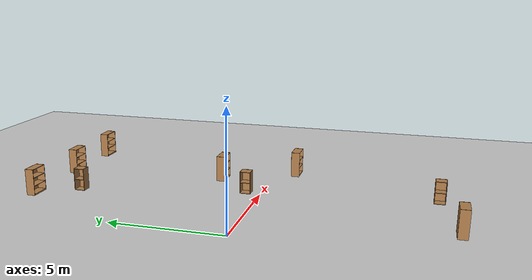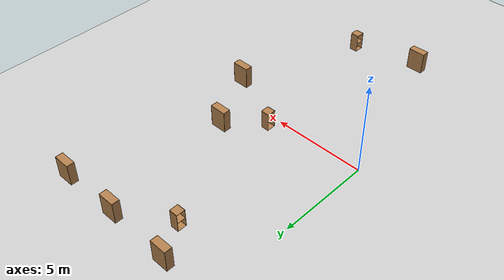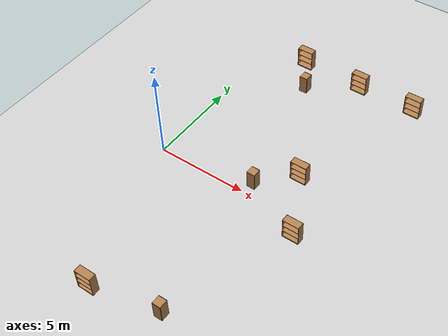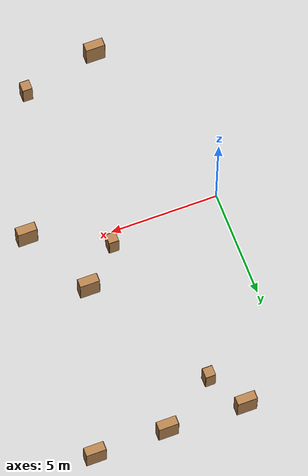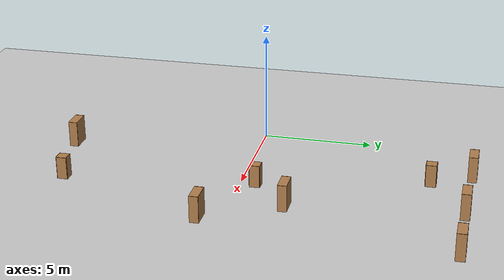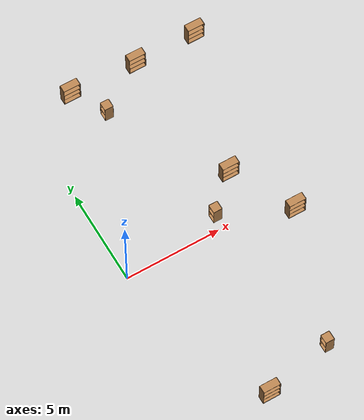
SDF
<sdf version="1.6">
 <world name="default">
  <model name="ground_plane">
   <static>1</static>
   <link name="link">
    <collision name="collision">
     <geometry><plane><normal>0 0 1</normal><size>100 100</size></plane></geometry>
     <surface><friction><ode><mu>100</mu><mu2>50</mu2></ode></friction></surface>
    </collision>
    <visual name="visual">
     <cast_shadows>0</cast_shadows>
     <geometry><plane><normal>0 0 1</normal><size>100 100</size></plane></geometry>
     <material>
      <script><uri>file://media/materials/scripts/gazebo.material</uri><name>Gazebo/Grey</name></script>
     </material>
    </visual>
   </link>
  </model>
  <model name="cabinet_2">
   <static>1</static>
   <link name="cabinet_bottom_plate">
    <inertial>
     <pose>0 0 -1 0 -0 0</pose>
     <inertia><ixx>2.05</ixx><ixy>0</ixy><ixz>0</ixz><iyy>2.05</iyy><iyz>0</iyz><izz>2.05</izz></inertia>
     <mass>25</mass>
    </inertial>
    <collision name="cabinet_bottom_plate_geom">
     <pose>0 0 0.01 0 -0 0</pose>
     <geometry><box><size>0.45 0.45 0.02</size></box></geometry>
    </collision>
    <visual name="cabinet_bottom_plate_geom_visual">
     <pose>0 0 0.01 0 -0 0</pose>
     <geometry><box><size>0.45 0.45 0.02</size></box></geometry>
     <material>
      <script><uri>file://media/materials/scripts/gazebo.material</uri><name>Gazebo/Wood</name></script>
     </material>
    </visual>
    <collision name="cabinet_bottom_plate_geom_cabinet_back_plate">
     <pose>0.235 0 0.51 0 -0 0</pose>
     <geometry><box><size>0.02 0.45 1.02</size></box></geometry>
    </collision>
    <visual name="cabinet_bottom_plate_geom_cabinet_back_plate_visual">
     <pose>0.235 0 0.51 0 -0 0</pose>
     <geometry><box><size>0.02 0.45 1.02</size></box></geometry>
     <material>
      <script><uri>file://media/materials/scripts/gazebo.material</uri><name>Gazebo/Wood</name></script>
     </material>
    </visual>
    <collision name="cabinet_bottom_plate_geom_cabinet_left_plate">
     <pose>0 0.235 0.51 0 -0 0</pose>
     <geometry><box><size>0.45 0.02 1.02</size></box></geometry>
    </collision>
    <visual name="cabinet_bottom_plate_geom_cabinet_left_plate_visual">
     <pose>0 0.235 0.51 0 -0 0</pose>
     <geometry><box><size>0.45 0.02 1.02</size></box></geometry>
     <material>
      <script><uri>file://media/materials/scripts/gazebo.material</uri><name>Gazebo/Wood</name></script>
     </material>
    </visual>
    <collision name="cabinet_bottom_plate_geom_cabinet_middle_plate">
     <pose>0 0 0.51 0 -0 0</pose>
     <geometry><box><size>0.45 0.45 0.02</size></box></geometry>
    </collision>
    <visual name="cabinet_bottom_plate_geom_cabinet_middle_plate_visual">
     <pose>0 0 0.51 0 -0 0</pose>
     <geometry><box><size>0.45 0.45 0.02</size></box></geometry>
     <material>
      <script><uri>file://media/materials/scripts/gazebo.material</uri><name>Gazebo/Wood</name></script>
     </material>
    </visual>
    <collision name="cabinet_bottom_plate_geom_cabinet_right_plate">
     <pose>0 -0.235 0.51 0 -0 0</pose>
     <geometry><box><size>0.45 0.02 1.02</size></box></geometry>
    </collision>
    <visual name="cabinet_bottom_plate_geom_cabinet_right_plate_visual">
     <pose>0 -0.235 0.51 0 -0 0</pose>
     <geometry><box><size>0.45 0.02 1.02</size></box></geometry>
     <material>
      <script><uri>file://media/materials/scripts/gazebo.material</uri><name>Gazebo/Wood</name></script>
     </material>
    </visual>
    <collision name="cabinet_bottom_plate_geom_cabinet_top_plate">
     <pose>0 0 1.01 0 -0 0</pose>
     <geometry><box><size>0.45 0.45 0.02</size></box></geometry>
    </collision>
    <visual name="cabinet_bottom_plate_geom_cabinet_top_plate_visual">
     <pose>0 0 1.01 0 -0 0</pose>
     <geometry><box><size>0.45 0.45 0.02</size></box></geometry>
     <material>
      <script><uri>file://media/materials/scripts/gazebo.material</uri><name>Gazebo/Wood</name></script>
     </material>
    </visual>
   </link>
   <pose>3.52346 8.11397 0 0 -0 0</pose>
  </model>
  <model name="cabinet_3">
   <static>1</static>
   <link name="cabinet_bottom_plate">
    <inertial>
     <pose>0 0 -1 0 -0 0</pose>
     <inertia><ixx>2.05</ixx><ixy>0</ixy><ixz>0</ixz><iyy>2.05</iyy><iyz>0</iyz><izz>2.05</izz></inertia>
     <mass>25</mass>
    </inertial>
    <collision name="cabinet_bottom_plate_geom">
     <pose>0 0 0.01 0 -0 0</pose>
     <geometry><box><size>0.45 0.45 0.02</size></box></geometry>
    </collision>
    <visual name="cabinet_bottom_plate_geom_visual">
     <pose>0 0 0.01 0 -0 0</pose>
     <geometry><box><size>0.45 0.45 0.02</size></box></geometry>
     <material>
      <script><uri>file://media/materials/scripts/gazebo.material</uri><name>Gazebo/Wood</name></script>
     </material>
    </visual>
    <collision name="cabinet_bottom_plate_geom_cabinet_back_plate">
     <pose>0.235 0 0.51 0 -0 0</pose>
     <geometry><box><size>0.02 0.45 1.02</size></box></geometry>
    </collision>
    <visual name="cabinet_bottom_plate_geom_cabinet_back_plate_visual">
     <pose>0.235 0 0.51 0 -0 0</pose>
     <geometry><box><size>0.02 0.45 1.02</size></box></geometry>
     <material>
      <script><uri>file://media/materials/scripts/gazebo.material</uri><name>Gazebo/Wood</name></script>
     </material>
    </visual>
    <collision name="cabinet_bottom_plate_geom_cabinet_left_plate">
     <pose>0 0.235 0.51 0 -0 0</pose>
     <geometry><box><size>0.45 0.02 1.02</size></box></geometry>
    </collision>
    <visual name="cabinet_bottom_plate_geom_cabinet_left_plate_visual">
     <pose>0 0.235 0.51 0 -0 0</pose>
     <geometry><box><size>0.45 0.02 1.02</size></box></geometry>
     <material>
      <script><uri>file://media/materials/scripts/gazebo.material</uri><name>Gazebo/Wood</name></script>
     </material>
    </visual>
    <collision name="cabinet_bottom_plate_geom_cabinet_middle_plate">
     <pose>0 0 0.51 0 -0 0</pose>
     <geometry><box><size>0.45 0.45 0.02</size></box></geometry>
    </collision>
    <visual name="cabinet_bottom_plate_geom_cabinet_middle_plate_visual">
     <pose>0 0 0.51 0 -0 0</pose>
     <geometry><box><size>0.45 0.45 0.02</size></box></geometry>
     <material>
      <script><uri>file://media/materials/scripts/gazebo.material</uri><name>Gazebo/Wood</name></script>
     </material>
    </visual>
    <collision name="cabinet_bottom_plate_geom_cabinet_right_plate">
     <pose>0 -0.235 0.51 0 -0 0</pose>
     <geometry><box><size>0.45 0.02 1.02</size></box></geometry>
    </collision>
    <visual name="cabinet_bottom_plate_geom_cabinet_right_plate_visual">
     <pose>0 -0.235 0.51 0 -0 0</pose>
     <geometry><box><size>0.45 0.02 1.02</size></box></geometry>
     <material>
      <script><uri>file://media/materials/scripts/gazebo.material</uri><name>Gazebo/Wood</name></script>
     </material>
    </visual>
    <collision name="cabinet_bottom_plate_geom_cabinet_top_plate">
     <pose>0 0 1.01 0 -0 0</pose>
     <geometry><box><size>0.45 0.45 0.02</size></box></geometry>
    </collision>
    <visual name="cabinet_bottom_plate_geom_cabinet_top_plate_visual">
     <pose>0 0 1.01 0 -0 0</pose>
     <geometry><box><size>0.45 0.45 0.02</size></box></geometry>
     <material>
      <script><uri>file://media/materials/scripts/gazebo.material</uri><name>Gazebo/Wood</name></script>
     </material>
    </visual>
   </link>
   <pose>5.21342 0.69056 0 0 -0 0</pose>
  </model>
  <model name="cabinet_6">
   <static>1</static>
   <link name="cabinet_bottom_plate">
    <inertial>
     <pose>0 0 -1 0 -0 0</pose>
     <inertia><ixx>2.05</ixx><ixy>0</ixy><ixz>0</ixz><iyy>2.05</iyy><iyz>0</iyz><izz>2.05</izz></inertia>
     <mass>25</mass>
    </inertial>
    <collision name="cabinet_bottom_plate_geom">
     <pose>0 0 0.01 0 -0 0</pose>
     <geometry><box><size>0.45 0.45 0.02</size></box></geometry>
    </collision>
    <visual name="cabinet_bottom_plate_geom_visual">
     <pose>0 0 0.01 0 -0 0</pose>
     <geometry><box><size>0.45 0.45 0.02</size></box></geometry>
     <material>
      <script><uri>file://media/materials/scripts/gazebo.material</uri><name>Gazebo/Wood</name></script>
     </material>
    </visual>
    <collision name="cabinet_bottom_plate_geom_cabinet_back_plate">
     <pose>0.235 0 0.51 0 -0 0</pose>
     <geometry><box><size>0.02 0.45 1.02</size></box></geometry>
    </collision>
    <visual name="cabinet_bottom_plate_geom_cabinet_back_plate_visual">
     <pose>0.235 0 0.51 0 -0 0</pose>
     <geometry><box><size>0.02 0.45 1.02</size></box></geometry>
     <material>
      <script><uri>file://media/materials/scripts/gazebo.material</uri><name>Gazebo/Wood</name></script>
     </material>
    </visual>
    <collision name="cabinet_bottom_plate_geom_cabinet_left_plate">
     <pose>0 0.235 0.51 0 -0 0</pose>
     <geometry><box><size>0.45 0.02 1.02</size></box></geometry>
    </collision>
    <visual name="cabinet_bottom_plate_geom_cabinet_left_plate_visual">
     <pose>0 0.235 0.51 0 -0 0</pose>
     <geometry><box><size>0.45 0.02 1.02</size></box></geometry>
     <material>
      <script><uri>file://media/materials/scripts/gazebo.material</uri><name>Gazebo/Wood</name></script>
     </material>
    </visual>
    <collision name="cabinet_bottom_plate_geom_cabinet_middle_plate">
     <pose>0 0 0.51 0 -0 0</pose>
     <geometry><box><size>0.45 0.45 0.02</size></box></geometry>
    </collision>
    <visual name="cabinet_bottom_plate_geom_cabinet_middle_plate_visual">
     <pose>0 0 0.51 0 -0 0</pose>
     <geometry><box><size>0.45 0.45 0.02</size></box></geometry>
     <material>
      <script><uri>file://media/materials/scripts/gazebo.material</uri><name>Gazebo/Wood</name></script>
     </material>
    </visual>
    <collision name="cabinet_bottom_plate_geom_cabinet_right_plate">
     <pose>0 -0.235 0.51 0 -0 0</pose>
     <geometry><box><size>0.45 0.02 1.02</size></box></geometry>
    </collision>
    <visual name="cabinet_bottom_plate_geom_cabinet_right_plate_visual">
     <pose>0 -0.235 0.51 0 -0 0</pose>
     <geometry><box><size>0.45 0.02 1.02</size></box></geometry>
     <material>
      <script><uri>file://media/materials/scripts/gazebo.material</uri><name>Gazebo/Wood</name></script>
     </material>
    </visual>
    <collision name="cabinet_bottom_plate_geom_cabinet_top_plate">
     <pose>0 0 1.01 0 -0 0</pose>
     <geometry><box><size>0.45 0.45 0.02</size></box></geometry>
    </collision>
    <visual name="cabinet_bottom_plate_geom_cabinet_top_plate_visual">
     <pose>0 0 1.01 0 -0 0</pose>
     <geometry><box><size>0.45 0.45 0.02</size></box></geometry>
     <material>
      <script><uri>file://media/materials/scripts/gazebo.material</uri><name>Gazebo/Wood</name></script>
     </material>
    </visual>
   </link>
   <pose>6.23569 -7.74598 0 0 -0 0</pose>
  </model>
  <model name="bookshelf">
   <static>1</static>
   <link name="link">
    <inertial><mass>1</mass></inertial>
    <collision name="back">
     <pose>0 0.005 0.6 0 -0 0</pose>
     <geometry><box><size>0.9 0.01 1.2</size></box></geometry>
    </collision>
    <visual name="visual1">
     <pose>0 0.005 0.6 0 -0 0</pose>
     <geometry><box><size>0.9 0.01 1.2</size></box></geometry>
     <material>
      <script><uri>file://media/materials/scripts/gazebo.material</uri><name>Gazebo/Wood</name></script>
     </material>
    </visual>
    <collision name="left_side">
     <pose>0.45 -0.195 0.6 0 -0 0</pose>
     <geometry><box><size>0.02 0.4 1.2</size></box></geometry>
    </collision>
    <visual name="visual2">
     <pose>0.45 -0.195 0.6 0 -0 0</pose>
     <geometry><box><size>0.02 0.4 1.2</size></box></geometry>
     <material>
      <script><uri>file://media/materials/scripts/gazebo.material</uri><name>Gazebo/Wood</name></script>
     </material>
    </visual>
    <collision name="right_side">
     <pose>-0.45 -0.195 0.6 0 -0 0</pose>
     <geometry><box><size>0.02 0.4 1.2</size></box></geometry>
    </collision>
    <visual name="visual3">
     <pose>-0.45 -0.195 0.6 0 -0 0</pose>
     <geometry><box><size>0.02 0.4 1.2</size></box></geometry>
     <material>
      <script><uri>file://media/materials/scripts/gazebo.material</uri><name>Gazebo/Wood</name></script>
     </material>
    </visual>
    <collision name="bottom">
     <pose>0 -0.195 0.03 0 -0 0</pose>
     <geometry><box><size>0.88 0.4 0.06</size></box></geometry>
    </collision>
    <visual name="visual4">
     <pose>0 -0.195 0.03 0 -0 0</pose>
     <geometry><box><size>0.88 0.4 0.06</size></box></geometry>
     <material>
      <script><uri>file://media/materials/scripts/gazebo.material</uri><name>Gazebo/Wood</name></script>
     </material>
    </visual>
    <collision name="top">
     <pose>0 -0.195 1.19 0 -0 0</pose>
     <geometry><box><size>0.88 0.4 0.02</size></box></geometry>
    </collision>
    <visual name="visual5">
     <pose>0 -0.195 1.19 0 -0 0</pose>
     <geometry><box><size>0.88 0.4 0.02</size></box></geometry>
     <material>
      <script><uri>file://media/materials/scripts/gazebo.material</uri><name>Gazebo/Wood</name></script>
     </material>
    </visual>
    <collision name="low_shelf">
     <pose>0 -0.195 0.43 0 -0 0</pose>
     <geometry><box><size>0.88 0.4 0.02</size></box></geometry>
    </collision>
    <visual name="visual6">
     <pose>0 -0.195 0.43 0 -0 0</pose>
     <geometry><box><size>0.88 0.4 0.02</size></box></geometry>
     <material>
      <script><uri>file://media/materials/scripts/gazebo.material</uri><name>Gazebo/Wood</name></script>
     </material>
    </visual>
    <collision name="high_shelf">
     <pose>0 -0.195 0.8 0 -0 0</pose>
     <geometry><box><size>0.88 0.4 0.02</size></box></geometry>
    </collision>
    <visual name="visual7">
     <pose>0 -0.195 0.8 0 -0 0</pose>
     <geometry><box><size>0.88 0.4 0.02</size></box></geometry>
     <material>
      <script><uri>file://media/materials/scripts/gazebo.material</uri><name>Gazebo/Wood</name></script>
     </material>
    </visual>
   </link>
   <pose>9.37856 9.94846 0 0 -0 0</pose>
  </model>
  <model name="bookshelf_0">
   <static>1</static>
   <link name="link">
    <inertial><mass>1</mass></inertial>
    <collision name="back">
     <pose>0 0.005 0.6 0 -0 0</pose>
     <geometry><box><size>0.9 0.01 1.2</size></box></geometry>
    </collision>
    <visual name="visual1">
     <pose>0 0.005 0.6 0 -0 0</pose>
     <geometry><box><size>0.9 0.01 1.2</size></box></geometry>
     <material>
      <script><uri>file://media/materials/scripts/gazebo.material</uri><name>Gazebo/Wood</name></script>
     </material>
    </visual>
    <collision name="left_side">
     <pose>0.45 -0.195 0.6 0 -0 0</pose>
     <geometry><box><size>0.02 0.4 1.2</size></box></geometry>
    </collision>
    <visual name="visual2">
     <pose>0.45 -0.195 0.6 0 -0 0</pose>
     <geometry><box><size>0.02 0.4 1.2</size></box></geometry>
     <material>
      <script><uri>file://media/materials/scripts/gazebo.material</uri><name>Gazebo/Wood</name></script>
     </material>
    </visual>
    <collision name="right_side">
     <pose>-0.45 -0.195 0.6 0 -0 0</pose>
     <geometry><box><size>0.02 0.4 1.2</size></box></geometry>
    </collision>
    <visual name="visual3">
     <pose>-0.45 -0.195 0.6 0 -0 0</pose>
     <geometry><box><size>0.02 0.4 1.2</size></box></geometry>
     <material>
      <script><uri>file://media/materials/scripts/gazebo.material</uri><name>Gazebo/Wood</name></script>
     </material>
    </visual>
    <collision name="bottom">
     <pose>0 -0.195 0.03 0 -0 0</pose>
     <geometry><box><size>0.88 0.4 0.06</size></box></geometry>
    </collision>
    <visual name="visual4">
     <pose>0 -0.195 0.03 0 -0 0</pose>
     <geometry><box><size>0.88 0.4 0.06</size></box></geometry>
     <material>
      <script><uri>file://media/materials/scripts/gazebo.material</uri><name>Gazebo/Wood</name></script>
     </material>
    </visual>
    <collision name="top">
     <pose>0 -0.195 1.19 0 -0 0</pose>
     <geometry><box><size>0.88 0.4 0.02</size></box></geometry>
    </collision>
    <visual name="visual5">
     <pose>0 -0.195 1.19 0 -0 0</pose>
     <geometry><box><size>0.88 0.4 0.02</size></box></geometry>
     <material>
      <script><uri>file://media/materials/scripts/gazebo.material</uri><name>Gazebo/Wood</name></script>
     </material>
    </visual>
    <collision name="low_shelf">
     <pose>0 -0.195 0.43 0 -0 0</pose>
     <geometry><box><size>0.88 0.4 0.02</size></box></geometry>
    </collision>
    <visual name="visual6">
     <pose>0 -0.195 0.43 0 -0 0</pose>
     <geometry><box><size>0.88 0.4 0.02</size></box></geometry>
     <material>
      <script><uri>file://media/materials/scripts/gazebo.material</uri><name>Gazebo/Wood</name></script>
     </material>
    </visual>
    <collision name="high_shelf">
     <pose>0 -0.195 0.8 0 -0 0</pose>
     <geometry><box><size>0.88 0.4 0.02</size></box></geometry>
    </collision>
    <visual name="visual7">
     <pose>0 -0.195 0.8 0 -0 0</pose>
     <geometry><box><size>0.88 0.4 0.02</size></box></geometry>
     <material>
      <script><uri>file://media/materials/scripts/gazebo.material</uri><name>Gazebo/Wood</name></script>
     </material>
    </visual>
   </link>
   <pose>6.07152 9.94292 0 0 -0 0</pose>
  </model>
  <model name="bookshelf_1">
   <static>1</static>
   <link name="link">
    <inertial><mass>1</mass></inertial>
    <collision name="back">
     <pose>0 0.005 0.6 0 -0 0</pose>
     <geometry><box><size>0.9 0.01 1.2</size></box></geometry>
    </collision>
    <visual name="visual1">
     <pose>0 0.005 0.6 0 -0 0</pose>
     <geometry><box><size>0.9 0.01 1.2</size></box></geometry>
     <material>
      <script><uri>file://media/materials/scripts/gazebo.material</uri><name>Gazebo/Wood</name></script>
     </material>
    </visual>
    <collision name="left_side">
     <pose>0.45 -0.195 0.6 0 -0 0</pose>
     <geometry><box><size>0.02 0.4 1.2</size></box></geometry>
    </collision>
    <visual name="visual2">
     <pose>0.45 -0.195 0.6 0 -0 0</pose>
     <geometry><box><size>0.02 0.4 1.2</size></box></geometry>
     <material>
      <script><uri>file://media/materials/scripts/gazebo.material</uri><name>Gazebo/Wood</name></script>
     </material>
    </visual>
    <collision name="right_side">
     <pose>-0.45 -0.195 0.6 0 -0 0</pose>
     <geometry><box><size>0.02 0.4 1.2</size></box></geometry>
    </collision>
    <visual name="visual3">
     <pose>-0.45 -0.195 0.6 0 -0 0</pose>
     <geometry><box><size>0.02 0.4 1.2</size></box></geometry>
     <material>
      <script><uri>file://media/materials/scripts/gazebo.material</uri><name>Gazebo/Wood</name></script>
     </material>
    </visual>
    <collision name="bottom">
     <pose>0 -0.195 0.03 0 -0 0</pose>
     <geometry><box><size>0.88 0.4 0.06</size></box></geometry>
    </collision>
    <visual name="visual4">
     <pose>0 -0.195 0.03 0 -0 0</pose>
     <geometry><box><size>0.88 0.4 0.06</size></box></geometry>
     <material>
      <script><uri>file://media/materials/scripts/gazebo.material</uri><name>Gazebo/Wood</name></script>
     </material>
    </visual>
    <collision name="top">
     <pose>0 -0.195 1.19 0 -0 0</pose>
     <geometry><box><size>0.88 0.4 0.02</size></box></geometry>
    </collision>
    <visual name="visual5">
     <pose>0 -0.195 1.19 0 -0 0</pose>
     <geometry><box><size>0.88 0.4 0.02</size></box></geometry>
     <material>
      <script><uri>file://media/materials/scripts/gazebo.material</uri><name>Gazebo/Wood</name></script>
     </material>
    </visual>
    <collision name="low_shelf">
     <pose>0 -0.195 0.43 0 -0 0</pose>
     <geometry><box><size>0.88 0.4 0.02</size></box></geometry>
    </collision>
    <visual name="visual6">
     <pose>0 -0.195 0.43 0 -0 0</pose>
     <geometry><box><size>0.88 0.4 0.02</size></box></geometry>
     <material>
      <script><uri>file://media/materials/scripts/gazebo.material</uri><name>Gazebo/Wood</name></script>
     </material>
    </visual>
    <collision name="high_shelf">
     <pose>0 -0.195 0.8 0 -0 0</pose>
     <geometry><box><size>0.88 0.4 0.02</size></box></geometry>
    </collision>
    <visual name="visual7">
     <pose>0 -0.195 0.8 0 -0 0</pose>
     <geometry><box><size>0.88 0.4 0.02</size></box></geometry>
     <material>
      <script><uri>file://media/materials/scripts/gazebo.material</uri><name>Gazebo/Wood</name></script>
     </material>
    </visual>
   </link>
   <pose>6.92756 2.50665 0 0 -0 0</pose>
  </model>
  <model name="bookshelf_2">
   <static>1</static>
   <link name="link">
    <inertial><mass>1</mass></inertial>
    <collision name="back">
     <pose>0 0.005 0.6 0 -0 0</pose>
     <geometry><box><size>0.9 0.01 1.2</size></box></geometry>
    </collision>
    <visual name="visual1">
     <pose>0 0.005 0.6 0 -0 0</pose>
     <geometry><box><size>0.9 0.01 1.2</size></box></geometry>
     <material>
      <script><uri>file://media/materials/scripts/gazebo.material</uri><name>Gazebo/Wood</name></script>
     </material>
    </visual>
    <collision name="left_side">
     <pose>0.45 -0.195 0.6 0 -0 0</pose>
     <geometry><box><size>0.02 0.4 1.2</size></box></geometry>
    </collision>
    <visual name="visual2">
     <pose>0.45 -0.195 0.6 0 -0 0</pose>
     <geometry><box><size>0.02 0.4 1.2</size></box></geometry>
     <material>
      <script><uri>file://media/materials/scripts/gazebo.material</uri><name>Gazebo/Wood</name></script>
     </material>
    </visual>
    <collision name="right_side">
     <pose>-0.45 -0.195 0.6 0 -0 0</pose>
     <geometry><box><size>0.02 0.4 1.2</size></box></geometry>
    </collision>
    <visual name="visual3">
     <pose>-0.45 -0.195 0.6 0 -0 0</pose>
     <geometry><box><size>0.02 0.4 1.2</size></box></geometry>
     <material>
      <script><uri>file://media/materials/scripts/gazebo.material</uri><name>Gazebo/Wood</name></script>
     </material>
    </visual>
    <collision name="bottom">
     <pose>0 -0.195 0.03 0 -0 0</pose>
     <geometry><box><size>0.88 0.4 0.06</size></box></geometry>
    </collision>
    <visual name="visual4">
     <pose>0 -0.195 0.03 0 -0 0</pose>
     <geometry><box><size>0.88 0.4 0.06</size></box></geometry>
     <material>
      <script><uri>file://media/materials/scripts/gazebo.material</uri><name>Gazebo/Wood</name></script>
     </material>
    </visual>
    <collision name="top">
     <pose>0 -0.195 1.19 0 -0 0</pose>
     <geometry><box><size>0.88 0.4 0.02</size></box></geometry>
    </collision>
    <visual name="visual5">
     <pose>0 -0.195 1.19 0 -0 0</pose>
     <geometry><box><size>0.88 0.4 0.02</size></box></geometry>
     <material>
      <script><uri>file://media/materials/scripts/gazebo.material</uri><name>Gazebo/Wood</name></script>
     </material>
    </visual>
    <collision name="low_shelf">
     <pose>0 -0.195 0.43 0 -0 0</pose>
     <geometry><box><size>0.88 0.4 0.02</size></box></geometry>
    </collision>
    <visual name="visual6">
     <pose>0 -0.195 0.43 0 -0 0</pose>
     <geometry><box><size>0.88 0.4 0.02</size></box></geometry>
     <material>
      <script><uri>file://media/materials/scripts/gazebo.material</uri><name>Gazebo/Wood</name></script>
     </material>
    </visual>
    <collision name="high_shelf">
     <pose>0 -0.195 0.8 0 -0 0</pose>
     <geometry><box><size>0.88 0.4 0.02</size></box></geometry>
    </collision>
    <visual name="visual7">
     <pose>0 -0.195 0.8 0 -0 0</pose>
     <geometry><box><size>0.88 0.4 0.02</size></box></geometry>
     <material>
      <script><uri>file://media/materials/scripts/gazebo.material</uri><name>Gazebo/Wood</name></script>
     </material>
    </visual>
   </link>
   <pose>8.64228 -0.775818 0 0 -0 0</pose>
  </model>
  <model name="bookshelf_4">
   <static>1</static>
   <link name="link">
    <inertial><mass>1</mass></inertial>
    <collision name="back">
     <pose>0 0.005 0.6 0 -0 0</pose>
     <geometry><box><size>0.9 0.01 1.2</size></box></geometry>
    </collision>
    <visual name="visual1">
     <pose>0 0.005 0.6 0 -0 0</pose>
     <geometry><box><size>0.9 0.01 1.2</size></box></geometry>
     <material>
      <script><uri>file://media/materials/scripts/gazebo.material</uri><name>Gazebo/Wood</name></script>
     </material>
    </visual>
    <collision name="left_side">
     <pose>0.45 -0.195 0.6 0 -0 0</pose>
     <geometry><box><size>0.02 0.4 1.2</size></box></geometry>
    </collision>
    <visual name="visual2">
     <pose>0.45 -0.195 0.6 0 -0 0</pose>
     <geometry><box><size>0.02 0.4 1.2</size></box></geometry>
     <material>
      <script><uri>file://media/materials/scripts/gazebo.material</uri><name>Gazebo/Wood</name></script>
     </material>
    </visual>
    <collision name="right_side">
     <pose>-0.45 -0.195 0.6 0 -0 0</pose>
     <geometry><box><size>0.02 0.4 1.2</size></box></geometry>
    </collision>
    <visual name="visual3">
     <pose>-0.45 -0.195 0.6 0 -0 0</pose>
     <geometry><box><size>0.02 0.4 1.2</size></box></geometry>
     <material>
      <script><uri>file://media/materials/scripts/gazebo.material</uri><name>Gazebo/Wood</name></script>
     </material>
    </visual>
    <collision name="bottom">
     <pose>0 -0.195 0.03 0 -0 0</pose>
     <geometry><box><size>0.88 0.4 0.06</size></box></geometry>
    </collision>
    <visual name="visual4">
     <pose>0 -0.195 0.03 0 -0 0</pose>
     <geometry><box><size>0.88 0.4 0.06</size></box></geometry>
     <material>
      <script><uri>file://media/materials/scripts/gazebo.material</uri><name>Gazebo/Wood</name></script>
     </material>
    </visual>
    <collision name="top">
     <pose>0 -0.195 1.19 0 -0 0</pose>
     <geometry><box><size>0.88 0.4 0.02</size></box></geometry>
    </collision>
    <visual name="visual5">
     <pose>0 -0.195 1.19 0 -0 0</pose>
     <geometry><box><size>0.88 0.4 0.02</size></box></geometry>
     <material>
      <script><uri>file://media/materials/scripts/gazebo.material</uri><name>Gazebo/Wood</name></script>
     </material>
    </visual>
    <collision name="low_shelf">
     <pose>0 -0.195 0.43 0 -0 0</pose>
     <geometry><box><size>0.88 0.4 0.02</size></box></geometry>
    </collision>
    <visual name="visual6">
     <pose>0 -0.195 0.43 0 -0 0</pose>
     <geometry><box><size>0.88 0.4 0.02</size></box></geometry>
     <material>
      <script><uri>file://media/materials/scripts/gazebo.material</uri><name>Gazebo/Wood</name></script>
     </material>
    </visual>
    <collision name="high_shelf">
     <pose>0 -0.195 0.8 0 -0 0</pose>
     <geometry><box><size>0.88 0.4 0.02</size></box></geometry>
    </collision>
    <visual name="visual7">
     <pose>0 -0.195 0.8 0 -0 0</pose>
     <geometry><box><size>0.88 0.4 0.02</size></box></geometry>
     <material>
      <script><uri>file://media/materials/scripts/gazebo.material</uri><name>Gazebo/Wood</name></script>
     </material>
    </visual>
   </link>
   <pose>2.49632 10.0511 0 0 -0 0</pose>
  </model>
  <model name="bookshelf_5">
   <static>1</static>
   <link name="link">
    <inertial><mass>1</mass></inertial>
    <collision name="back">
     <pose>0 0.005 0.6 0 -0 0</pose>
     <geometry><box><size>0.9 0.01 1.2</size></box></geometry>
    </collision>
    <visual name="visual1">
     <pose>0 0.005 0.6 0 -0 0</pose>
     <geometry><box><size>0.9 0.01 1.2</size></box></geometry>
     <material>
      <script><uri>file://media/materials/scripts/gazebo.material</uri><name>Gazebo/Wood</name></script>
     </material>
    </visual>
    <collision name="left_side">
     <pose>0.45 -0.195 0.6 0 -0 0</pose>
     <geometry><box><size>0.02 0.4 1.2</size></box></geometry>
    </collision>
    <visual name="visual2">
     <pose>0.45 -0.195 0.6 0 -0 0</pose>
     <geometry><box><size>0.02 0.4 1.2</size></box></geometry>
     <material>
      <script><uri>file://media/materials/scripts/gazebo.material</uri><name>Gazebo/Wood</name></script>
     </material>
    </visual>
    <collision name="right_side">
     <pose>-0.45 -0.195 0.6 0 -0 0</pose>
     <geometry><box><size>0.02 0.4 1.2</size></box></geometry>
    </collision>
    <visual name="visual3">
     <pose>-0.45 -0.195 0.6 0 -0 0</pose>
     <geometry><box><size>0.02 0.4 1.2</size></box></geometry>
     <material>
      <script><uri>file://media/materials/scripts/gazebo.material</uri><name>Gazebo/Wood</name></script>
     </material>
    </visual>
    <collision name="bottom">
     <pose>0 -0.195 0.03 0 -0 0</pose>
     <geometry><box><size>0.88 0.4 0.06</size></box></geometry>
    </collision>
    <visual name="visual4">
     <pose>0 -0.195 0.03 0 -0 0</pose>
     <geometry><box><size>0.88 0.4 0.06</size></box></geometry>
     <material>
      <script><uri>file://media/materials/scripts/gazebo.material</uri><name>Gazebo/Wood</name></script>
     </material>
    </visual>
    <collision name="top">
     <pose>0 -0.195 1.19 0 -0 0</pose>
     <geometry><box><size>0.88 0.4 0.02</size></box></geometry>
    </collision>
    <visual name="visual5">
     <pose>0 -0.195 1.19 0 -0 0</pose>
     <geometry><box><size>0.88 0.4 0.02</size></box></geometry>
     <material>
      <script><uri>file://media/materials/scripts/gazebo.material</uri><name>Gazebo/Wood</name></script>
     </material>
    </visual>
    <collision name="low_shelf">
     <pose>0 -0.195 0.43 0 -0 0</pose>
     <geometry><box><size>0.88 0.4 0.02</size></box></geometry>
    </collision>
    <visual name="visual6">
     <pose>0 -0.195 0.43 0 -0 0</pose>
     <geometry><box><size>0.88 0.4 0.02</size></box></geometry>
     <material>
      <script><uri>file://media/materials/scripts/gazebo.material</uri><name>Gazebo/Wood</name></script>
     </material>
    </visual>
    <collision name="high_shelf">
     <pose>0 -0.195 0.8 0 -0 0</pose>
     <geometry><box><size>0.88 0.4 0.02</size></box></geometry>
    </collision>
    <visual name="visual7">
     <pose>0 -0.195 0.8 0 -0 0</pose>
     <geometry><box><size>0.88 0.4 0.02</size></box></geometry>
     <material>
      <script><uri>file://media/materials/scripts/gazebo.material</uri><name>Gazebo/Wood</name></script>
     </material>
    </visual>
   </link>
   <pose>2.66031 -8.34535 0 0 -0 0</pose>
  </model>
 </world>
</sdf>
